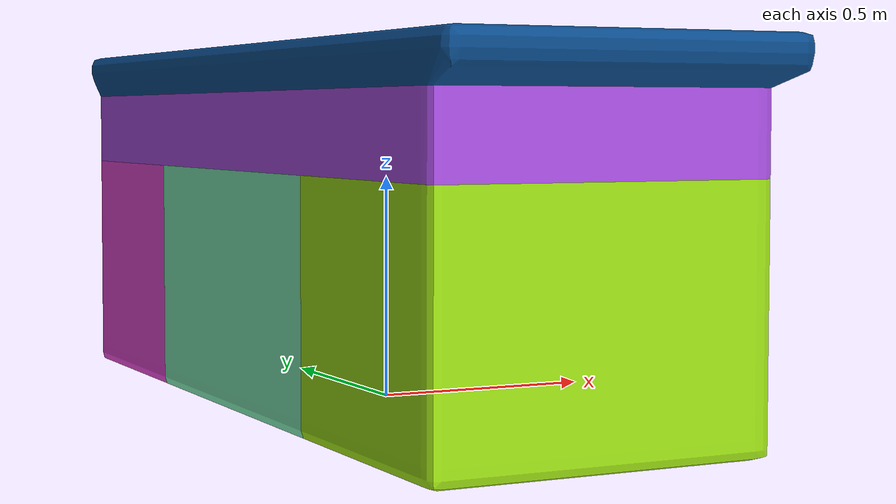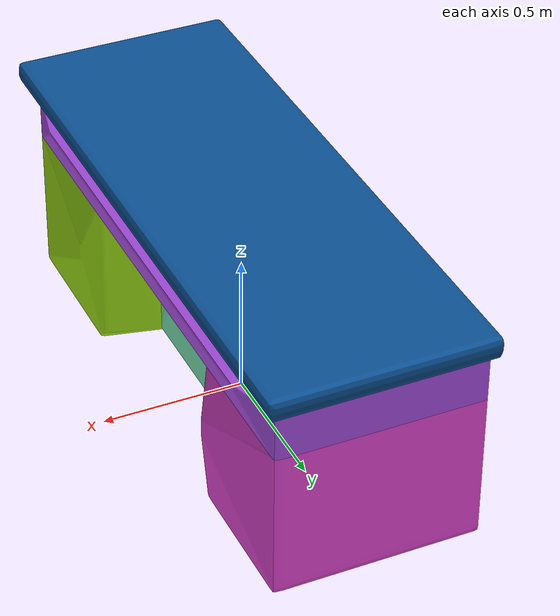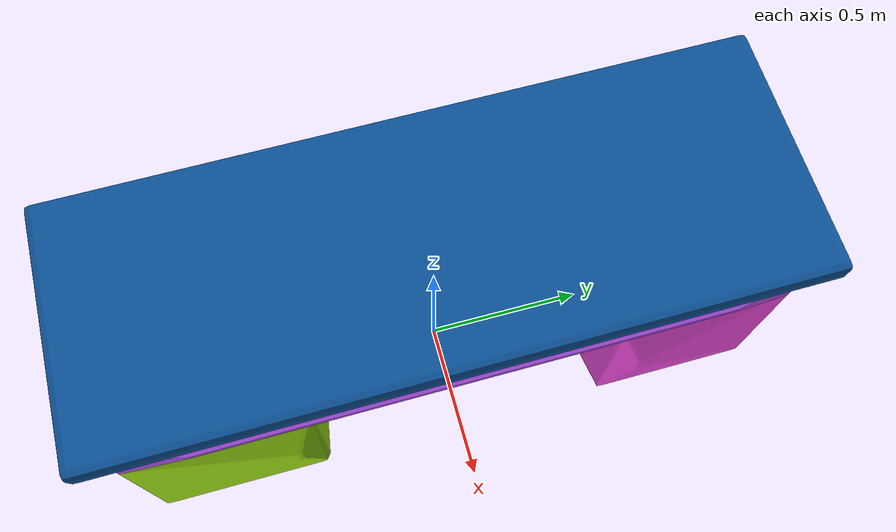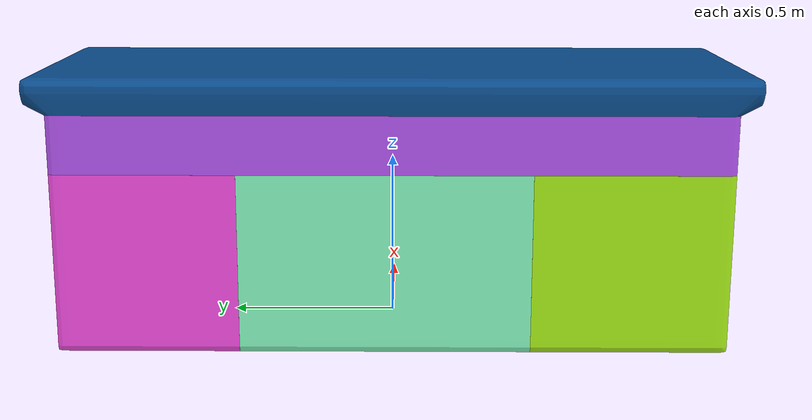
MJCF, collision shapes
<?xml version="1.0" ?>
<mujoco model="lab_table">
  <asset>
    <texture type="2d" name="material_0" file="material_0.png"/>
    <material name="material_0" texture="material_0" specular="0.4000000000000001" shininess="0.001"/>
    <mesh file="lab_table.obj" scale="1.031 1.031 1.031"/>
    <mesh file="lab_table/lab_table_collision_0.obj" scale="1.031 1.031 1.031"/>
    <mesh file="lab_table/lab_table_collision_1.obj" scale="1.031 1.031 1.031"/>
    <mesh file="lab_table/lab_table_collision_2.obj" scale="1.031 1.031 1.031"/>
    <mesh file="lab_table/lab_table_collision_3.obj" scale="1.031 1.031 1.031"/>
    <mesh file="lab_table/lab_table_collision_4.obj" scale="1.031 1.031 1.031"/>
  </asset>
  <worldbody>
    <body name="lab_table">
      <inertial pos="0 0 0.39" mass="1" diaginertia="0.04 0.04 0.025"/>
      <geom material="material_0" mesh="lab_table" class="visual"/>
      <geom mesh="lab_table_collision_0" rgba="0.9300897696033602 0.2869054063629327 0.8644734842226005 1" class="collision"/>
      <geom mesh="lab_table_collision_1" rgba="0.6797523515255485 0.3174381094842459 0.913929062207608 1" class="collision"/>
      <geom mesh="lab_table_collision_2" rgba="0.04137590552082959 0.3057307605376446 0.5659436979431951 1" class="collision"/>
      <geom mesh="lab_table_collision_3" rgba="0.637766971186311 0.9081840799815272 0.08444558245266198 1" class="collision"/>
      <geom mesh="lab_table_collision_4" rgba="0.5033976465617536 0.9413760530962246 0.7279173552028613 1" class="collision"/>
      <site class="grasppoint" pos="0.0000 0.0000 0.0341"/>
      <site class="grasppoint" pos="0.0000 0.0000 0.0454"/>
      <site class="grasppoint" pos="0.0000 0.0000 0.0539"/>
    </body>
  </worldbody>
  <compiler boundmass="0.015" boundinertia="1e-05" angle="radian"/>
  <default>
    <default class="visual">
      <geom group="2" type="mesh" contype="0" conaffinity="0" density="50"/>
    </default>
    <default class="collision">
      <geom group="3" type="mesh" density="50" friction="1.5 0.1 0.1" solimp="0.9 0.95 0.001" solref="0.02 1"/>
    </default>
    <default class="grasppoint">
      <site type="sphere" size="0.005" group="4" rgba="0 0 1 1"/>
    </default>
  </default>
</mujoco>
